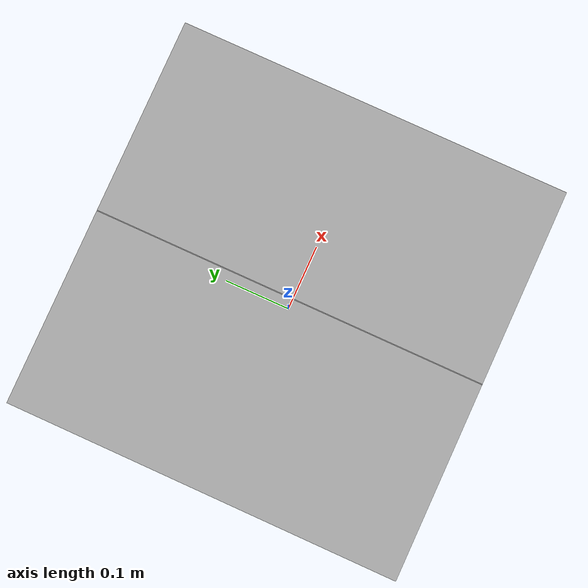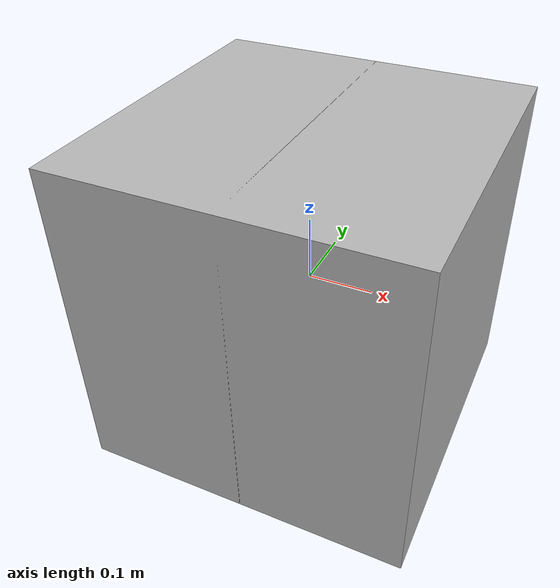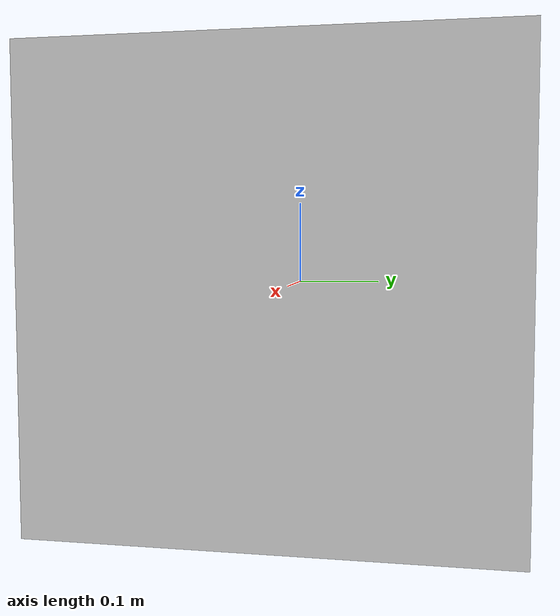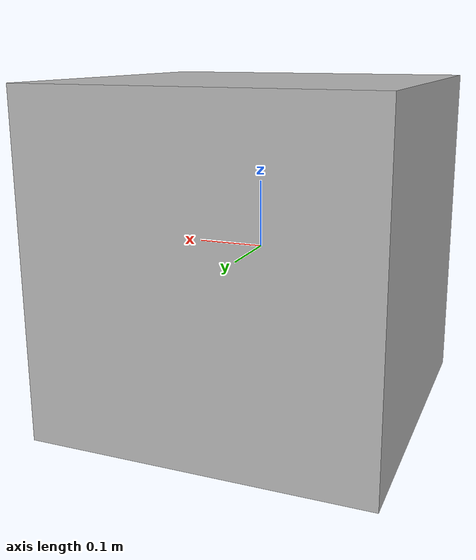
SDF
<?xml version="1.0" ?>
<sdf version="1.5">
  <model name="tag_box">
    <static>true</static>
    <link name="tag">
      <visual name="visual">
        <cast_shadows>false</cast_shadows>
        <geometry>
          <box>
            <size> 0.001 0.5 0.5</size>
          </box>
        </geometry>
        <material>
          <emissive>1 1 1 1</emissive>
          <script>
            <uri>model://tag_box/materials/scripts</uri>
            <uri>model://tag_box/materials/textures</uri>
            <name>TagBox</name>
          </script>
        </material>
      </visual>
    </link>
    <link name="box">
      <collision name="collision">
        <geometry>
          <box>
            <size> 0.5 0.5 0.5</size>
          </box>
        </geometry>
      </collision>
      <visual name="visual">
        <cast_shadows>false</cast_shadows>
        <geometry>
          <box>
            <size> 0.5 0.5 0.5</size>
          </box>
        </geometry>
        <material>
          <emissive>1 1 1 0</emissive>
        </material>
      </visual>
    </link>
    <joint name="joint" type="fixed">
      <pose></pose>
      <parent link="box"/>
      <child link="tag"/>
    </joint>
    <plugin name="tag_box_motion" filename="libtag_box_plugin.so"></plugin>
  </model>
</sdf>
